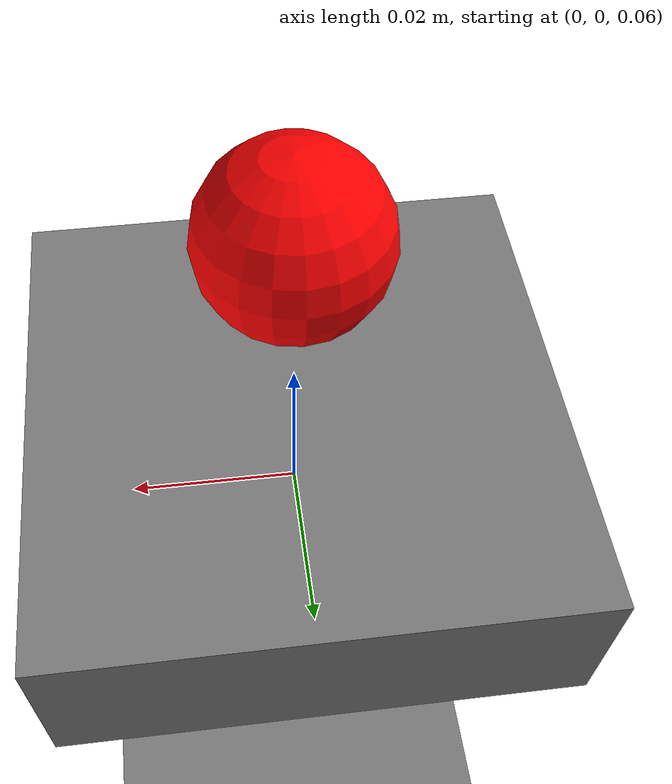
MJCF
<mujoco model="coffee-gimbal">

    <compiler angle="radian" coordinate="local"/>

    <option viscosity="1"/>
    <size memory="10M"/>

    <option timestep="0.01"/>
<!--    iterations="1"-->

    <default>
        <joint damping="0.1" />
        <geom friction=".5"/>
    </default>

    <worldbody>
        <light pos="0 -0.25 1"/>
        <geom type="plane" size="1 1 .01" pos="0 0 -.05"/>

<!--                  rgba="0.32 0.87 0.16 1"-->
<!--                  contype="0"-->
<!--                  conaffinity="0"-->

<!--                    rgba="0.87 0.32 0.16 1"-->
<!--                    contype="0"-->
<!--                    conaffinity="0"-->

                 <body name="mug_bottom" pos="0 0 0.066">
                    <joint name="rot_x" type="hinge" axis="0 1 0" pos="0 0 0.1" />

                     <geom type="box" size="0.03 0.03 0.01"/>
                </body>

        <body name="ball" pos="0 0 0.1">
            <freejoint/>
            <geom type="sphere" size="0.01" rgba="1 0 0 1" margin="0.01" gap=".01" mass="0.5"/>
        </body>

    </worldbody>

    <actuator>
        <position name="rot_x" joint="rot_x" kp="10" timeconst="0.1" ctrlrange="-1.57 1.57"/>
    </actuator>

</mujoco>
